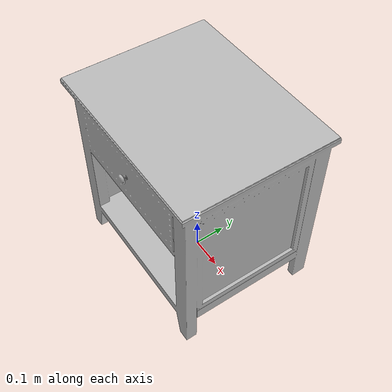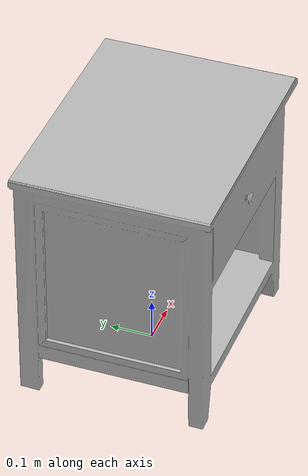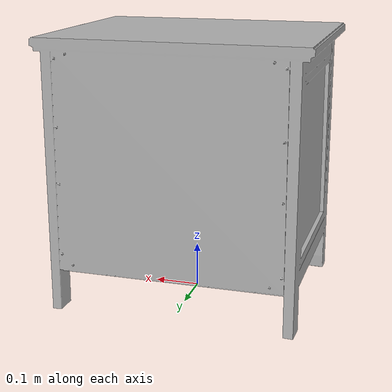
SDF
<sdf version="1.6">
	<model name="Nightstands_O14c5f5d1199b_lod0">
		<link name="main_link">
			<visual name="visual_RootNode">
				<geometry>
					<mesh>
						<uri>model://Nightstands_O14c5f5d1199b_lod0/meshes/visual_RootNode.dae</uri>
					</mesh>
				</geometry>
			</visual>
			<collision name="collision_RootNode_lod0_0">
				<geometry>
					<mesh>
						<uri>model://Nightstands_O14c5f5d1199b_lod0/meshes/collision_RootNode_lod0_0.dae</uri>
					</mesh>
				</geometry>
			</collision>
		</link>
	</model>
</sdf>
